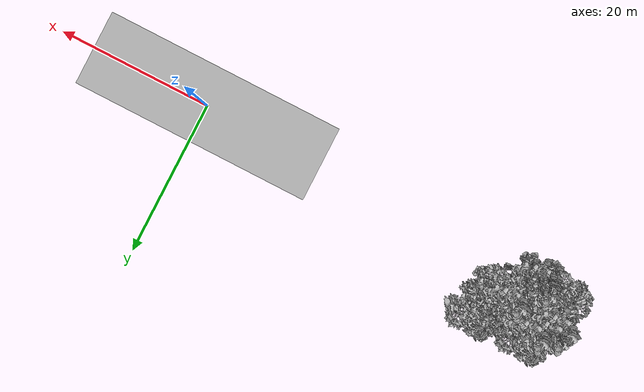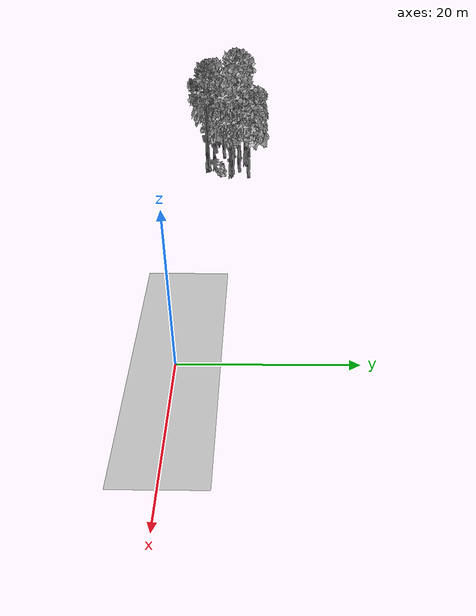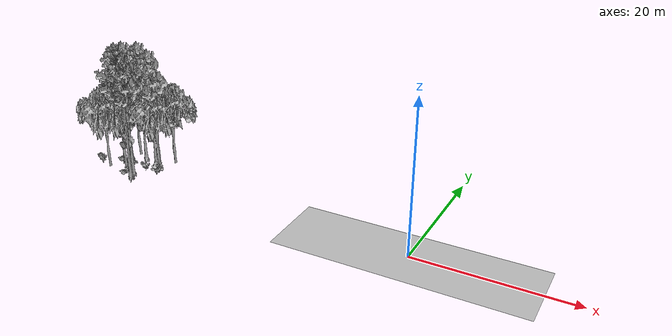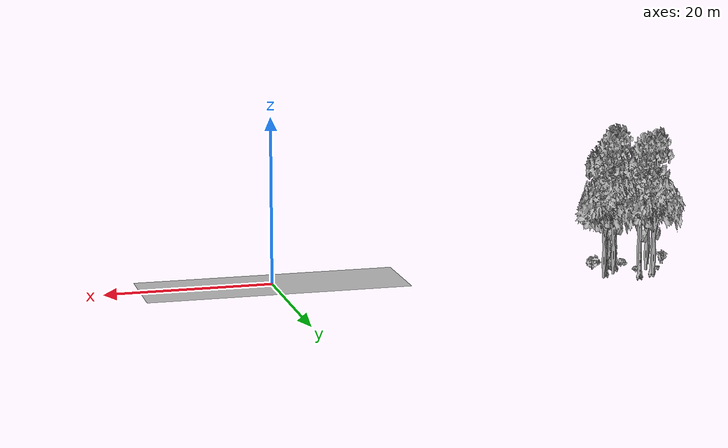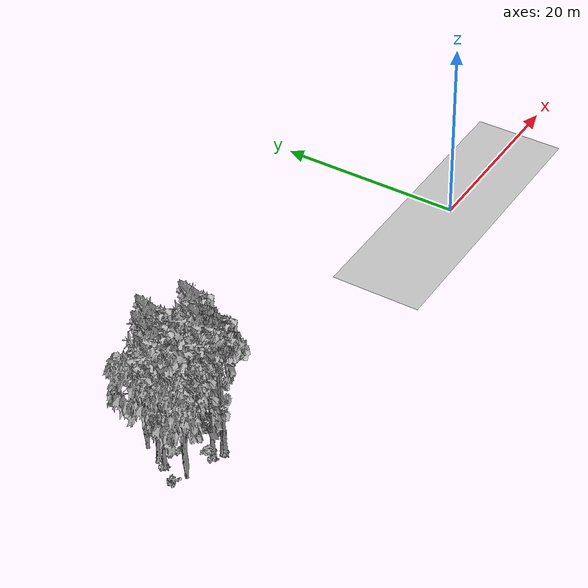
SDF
<sdf version="1.7">
 <world name="default">
  <model name="ground_plane">
   <static>1</static>
   <link name="link">
    <collision name="collision">
     <geometry><plane><normal>0 0 1</normal><size>100 100</size></plane></geometry>
     <surface><contact><ode><min_depth>0.01</min_depth><max_vel>0</max_vel></ode></contact></surface>
    </collision>
    <visual name="grass">
     <cast_shadows>0</cast_shadows>
     <geometry>
      <mesh>
       <scale>0.5814285714285714 0.18142857142857144 0.1</scale>
       <uri>file://grass_plane/meshes/grass_plane.dae</uri>
      </mesh>
     </geometry>
    </visual>
   </link>
  </model>
  <model name="Tree 8">
   <static>1</static>
   <pose>-42.26341744368104 1.5908221257960555 0 1.57079 -0 0</pose>
   <link name="link">
    <collision name="collision">
     <geometry><mesh><scale>3.5 5 3.5</scale><uri>model://tree_9/meshes/tree_9.obj</uri></mesh></geometry>
    </collision>
    <visual name="visual">
     <geometry><mesh><scale>3.5 5 3.5</scale><uri>model://tree_9/meshes/tree_9.obj</uri></mesh></geometry>
    </visual>
   </link>
  </model>
  <model name="Tree 111">
   <static>1</static>
   <pose>-45.617214589357324 5.261804919243151 0 1.57079 -0 0</pose>
   <link name="link">
    <collision name="collision">
     <geometry><mesh><scale>3.5 5 3.5</scale><uri>model://tree_9/meshes/tree_9.obj</uri></mesh></geometry>
    </collision>
    <visual name="visual">
     <geometry><mesh><scale>3.5 5 3.5</scale><uri>model://tree_9/meshes/tree_9.obj</uri></mesh></geometry>
    </visual>
   </link>
  </model>
  <model name="Tree 120">
   <static>1</static>
   <pose>-45.255876949060486 4.363739439103156 0 1.57079 -0 0</pose>
   <link name="link">
    <collision name="collision">
     <geometry><mesh><scale>3.5 5 3.5</scale><uri>model://tree_2/meshes/tree_2.obj</uri></mesh></geometry>
    </collision>
    <visual name="visual">
     <geometry><mesh><scale>3.5 5 3.5</scale><uri>model://tree_2/meshes/tree_2.obj</uri></mesh></geometry>
    </visual>
   </link>
  </model>
  <model name="Tree 158">
   <static>1</static>
   <pose>-43.69881122219635 6.203893129297413 0 1.57079 -0 0</pose>
   <link name="link">
    <collision name="collision">
     <geometry><mesh><scale>3.5 5 3.5</scale><uri>model://tree_9/meshes/tree_9.obj</uri></mesh></geometry>
    </collision>
    <visual name="visual">
     <geometry><mesh><scale>3.5 5 3.5</scale><uri>model://tree_9/meshes/tree_9.obj</uri></mesh></geometry>
    </visual>
   </link>
  </model>
  <model name="Tree 173">
   <static>1</static>
   <pose>-40.13301963415941 4.116400535239727 0 1.57079 -0 0</pose>
   <link name="link">
    <collision name="collision">
     <geometry><mesh><scale>3.5 5 3.5</scale><uri>model://tree_9/meshes/tree_9.obj</uri></mesh></geometry>
    </collision>
    <visual name="visual">
     <geometry><mesh><scale>3.5 5 3.5</scale><uri>model://tree_9/meshes/tree_9.obj</uri></mesh></geometry>
    </visual>
   </link>
  </model>
  <model name="Tree 207">
   <static>1</static>
   <pose>-45.28558323710539 6.762507071427692 0 1.57079 -0 0</pose>
   <link name="link">
    <collision name="collision">
     <geometry><mesh><scale>3.5 5 3.5</scale><uri>model://tree_2/meshes/tree_2.obj</uri></mesh></geometry>
    </collision>
    <visual name="visual">
     <geometry><mesh><scale>3.5 5 3.5</scale><uri>model://tree_2/meshes/tree_2.obj</uri></mesh></geometry>
    </visual>
   </link>
  </model>
  <model name="Tree 239">
   <static>1</static>
   <pose>-46.07473122240836 4.2753085624044544 0 1.57079 -0 0</pose>
   <link name="link">
    <collision name="collision">
     <geometry><mesh><scale>3.5 5 3.5</scale><uri>model://tree_9/meshes/tree_9.obj</uri></mesh></geometry>
    </collision>
    <visual name="visual">
     <geometry><mesh><scale>3.5 5 3.5</scale><uri>model://tree_9/meshes/tree_9.obj</uri></mesh></geometry>
    </visual>
   </link>
  </model>
  <model name="Tree 273">
   <static>1</static>
   <pose>-41.83592699496067 0.5064673386576306 0 1.57079 -0 0</pose>
   <link name="link">
    <collision name="collision">
     <geometry><mesh><scale>3.5 5 3.5</scale><uri>model://tree_9/meshes/tree_9.obj</uri></mesh></geometry>
    </collision>
    <visual name="visual">
     <geometry><mesh><scale>3.5 5 3.5</scale><uri>model://tree_9/meshes/tree_9.obj</uri></mesh></geometry>
    </visual>
   </link>
  </model>
  <model name="Tree 309">
   <static>1</static>
   <pose>-44.8606732406689 2.9533079839720457 0 1.57079 -0 0</pose>
   <link name="link">
    <collision name="collision">
     <geometry><mesh><scale>3.5 5 3.5</scale><uri>model://tree_2/meshes/tree_2.obj</uri></mesh></geometry>
    </collision>
    <visual name="visual">
     <geometry><mesh><scale>3.5 5 3.5</scale><uri>model://tree_2/meshes/tree_2.obj</uri></mesh></geometry>
    </visual>
   </link>
  </model>
  <model name="Tree 330">
   <static>1</static>
   <pose>-38.95419816606207 6.882575408271581 0 1.57079 -0 0</pose>
   <link name="link">
    <collision name="collision">
     <geometry><mesh><scale>3.5 5 3.5</scale><uri>model://tree_2/meshes/tree_2.obj</uri></mesh></geometry>
    </collision>
    <visual name="visual">
     <geometry><mesh><scale>3.5 5 3.5</scale><uri>model://tree_2/meshes/tree_2.obj</uri></mesh></geometry>
    </visual>
   </link>
  </model>
  <model name="Tree 345">
   <static>1</static>
   <pose>-39.98668833294106 4.4914276071595935 0 1.57079 -0 0</pose>
   <link name="link">
    <collision name="collision">
     <geometry><mesh><scale>3.5 5 3.5</scale><uri>model://tree_2/meshes/tree_2.obj</uri></mesh></geometry>
    </collision>
    <visual name="visual">
     <geometry><mesh><scale>3.5 5 3.5</scale><uri>model://tree_2/meshes/tree_2.obj</uri></mesh></geometry>
    </visual>
   </link>
  </model>
  <model name="Tree 384">
   <static>1</static>
   <pose>-40.67383547649976 5.443421632105583 0 1.57079 -0 0</pose>
   <link name="link">
    <collision name="collision">
     <geometry><mesh><scale>3.5 5 3.5</scale><uri>model://tree_2/meshes/tree_2.obj</uri></mesh></geometry>
    </collision>
    <visual name="visual">
     <geometry><mesh><scale>3.5 5 3.5</scale><uri>model://tree_2/meshes/tree_2.obj</uri></mesh></geometry>
    </visual>
   </link>
  </model>
  <model name="Tree 391">
   <static>1</static>
   <pose>-41.874538618276915 0.7167007398134295 0 1.57079 -0 0</pose>
   <link name="link">
    <collision name="collision">
     <geometry><mesh><scale>3.5 5 3.5</scale><uri>model://tree_9/meshes/tree_9.obj</uri></mesh></geometry>
    </collision>
    <visual name="visual">
     <geometry><mesh><scale>3.5 5 3.5</scale><uri>model://tree_9/meshes/tree_9.obj</uri></mesh></geometry>
    </visual>
   </link>
  </model>
  <model name="Tree 444">
   <static>1</static>
   <pose>-46.54600848623577 1.5558129689707378 0 1.57079 -0 0</pose>
   <link name="link">
    <collision name="collision">
     <geometry><mesh><scale>3.5 5 3.5</scale><uri>model://tree_2/meshes/tree_2.obj</uri></mesh></geometry>
    </collision>
    <visual name="visual">
     <geometry><mesh><scale>3.5 5 3.5</scale><uri>model://tree_2/meshes/tree_2.obj</uri></mesh></geometry>
    </visual>
   </link>
  </model>
  <model name="Bush 38">
   <static>1</static>
   <pose>-43.40505278987277 0.8109068387805554 0 1.57079 -0 0</pose>
   <link name="link">
    <collision name="collision">
     <geometry><mesh><scale>2 2 2</scale><uri>model://bush_2/meshes/bush_2.obj</uri></mesh></geometry>
     <surface><contact><collide_without_contact>false</collide_without_contact></contact></surface>
    </collision>
    <visual name="visual">
     <geometry><mesh><scale>2 2 2</scale><uri>model://bush_2/meshes/bush_2.obj</uri></mesh></geometry>
    </visual>
   </link>
  </model>
  <model name="Bush 103">
   <static>1</static>
   <pose>-40.941407359286494 2.7733791695821317 0 1.57079 -0 0</pose>
   <link name="link">
    <collision name="collision">
     <geometry><mesh><scale>2 2 2</scale><uri>model://bush_0/meshes/bush_0.obj</uri></mesh></geometry>
     <surface><contact><collide_without_contact>false</collide_without_contact></contact></surface>
    </collision>
    <visual name="visual">
     <geometry><mesh><scale>2 2 2</scale><uri>model://bush_0/meshes/bush_0.obj</uri></mesh></geometry>
    </visual>
   </link>
  </model>
  <model name="Bush 124">
   <static>1</static>
   <pose>-48.0884277879134 1.8800156023305483 0 1.57079 -0 0</pose>
   <link name="link">
    <collision name="collision">
     <geometry><mesh><scale>2 2 2</scale><uri>model://bush_0/meshes/bush_0.obj</uri></mesh></geometry>
     <surface><contact><collide_without_contact>false</collide_without_contact></contact></surface>
    </collision>
    <visual name="visual">
     <geometry><mesh><scale>2 2 2</scale><uri>model://bush_0/meshes/bush_0.obj</uri></mesh></geometry>
    </visual>
   </link>
  </model>
  <model name="Bush 137">
   <static>1</static>
   <pose>-46.53683567997741 4.039202076356059 0 1.57079 -0 0</pose>
   <link name="link">
    <collision name="collision">
     <geometry><mesh><scale>2 2 2</scale><uri>model://bush_2/meshes/bush_2.obj</uri></mesh></geometry>
     <surface><contact><collide_without_contact>false</collide_without_contact></contact></surface>
    </collision>
    <visual name="visual">
     <geometry><mesh><scale>2 2 2</scale><uri>model://bush_2/meshes/bush_2.obj</uri></mesh></geometry>
    </visual>
   </link>
  </model>
  <model name="Bush 158">
   <static>1</static>
   <pose>-44.18539474943236 3.9292730170156496 0 1.57079 -0 0</pose>
   <link name="link">
    <collision name="collision">
     <geometry><mesh><scale>2 2 2</scale><uri>model://bush_2/meshes/bush_2.obj</uri></mesh></geometry>
     <surface><contact><collide_without_contact>false</collide_without_contact></contact></surface>
    </collision>
    <visual name="visual">
     <geometry><mesh><scale>2 2 2</scale><uri>model://bush_2/meshes/bush_2.obj</uri></mesh></geometry>
    </visual>
   </link>
  </model>
  <model name="Bush 287">
   <static>1</static>
   <pose>-38.94806604349288 2.6963995432243024 0 1.57079 -0 0</pose>
   <link name="link">
    <collision name="collision">
     <geometry><mesh><scale>2 2 2</scale><uri>model://bush_1/meshes/bush_1.obj</uri></mesh></geometry>
     <surface><contact><collide_without_contact>false</collide_without_contact></contact></surface>
    </collision>
    <visual name="visual">
     <geometry><mesh><scale>2 2 2</scale><uri>model://bush_1/meshes/bush_1.obj</uri></mesh></geometry>
    </visual>
   </link>
  </model>
  <model name="Bush 302">
   <static>1</static>
   <pose>-48.23710954347706 1.9823701673857563 0 1.57079 -0 0</pose>
   <link name="link">
    <collision name="collision">
     <geometry><mesh><scale>2 2 2</scale><uri>model://bush_5/meshes/bush_5.obj</uri></mesh></geometry>
     <surface><contact><collide_without_contact>false</collide_without_contact></contact></surface>
    </collision>
    <visual name="visual">
     <geometry><mesh><scale>2 2 2</scale><uri>model://bush_5/meshes/bush_5.obj</uri></mesh></geometry>
    </visual>
   </link>
  </model>
  <model name="Bush 315">
   <static>1</static>
   <pose>-43.00319684655021 1.6431020871327568 0 1.57079 -0 0</pose>
   <link name="link">
    <collision name="collision">
     <geometry><mesh><scale>2 2 2</scale><uri>model://bush_3/meshes/bush_3.obj</uri></mesh></geometry>
     <surface><contact><collide_without_contact>false</collide_without_contact></contact></surface>
    </collision>
    <visual name="visual">
     <geometry><mesh><scale>2 2 2</scale><uri>model://bush_3/meshes/bush_3.obj</uri></mesh></geometry>
    </visual>
   </link>
  </model>
 </world>
</sdf>
